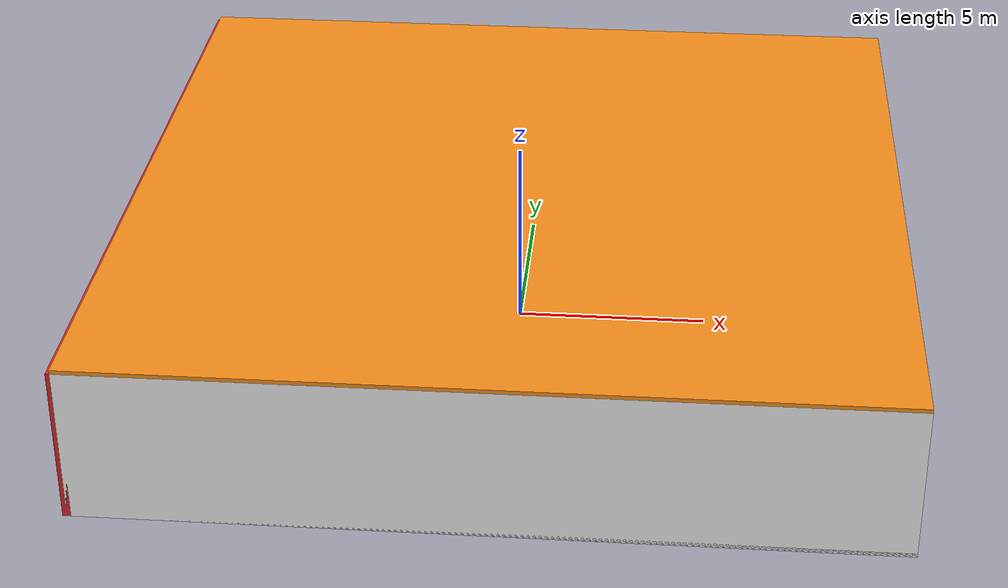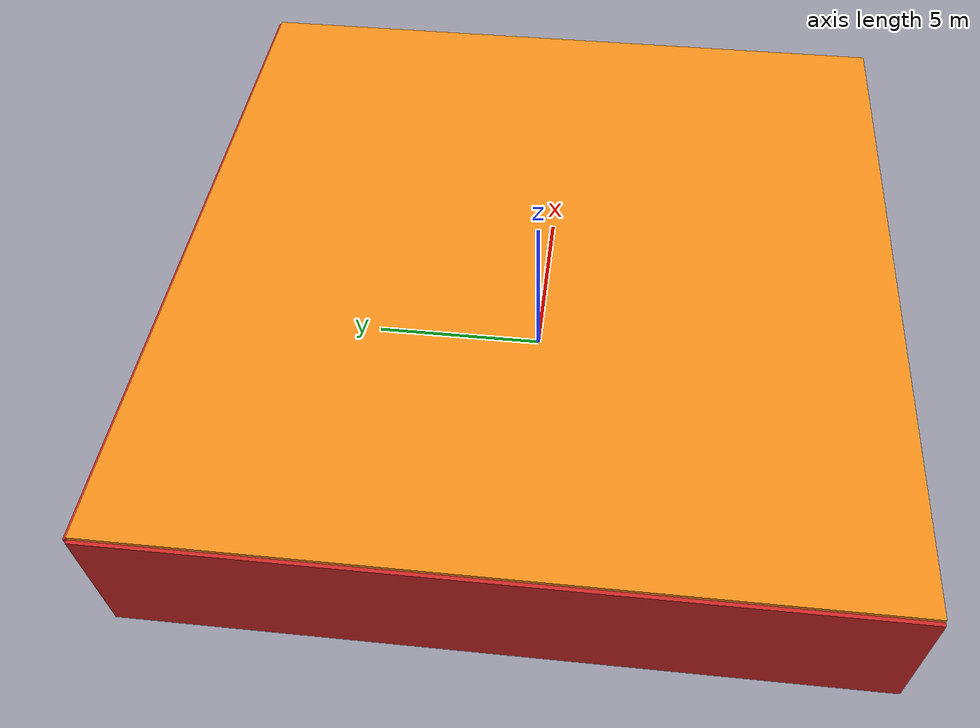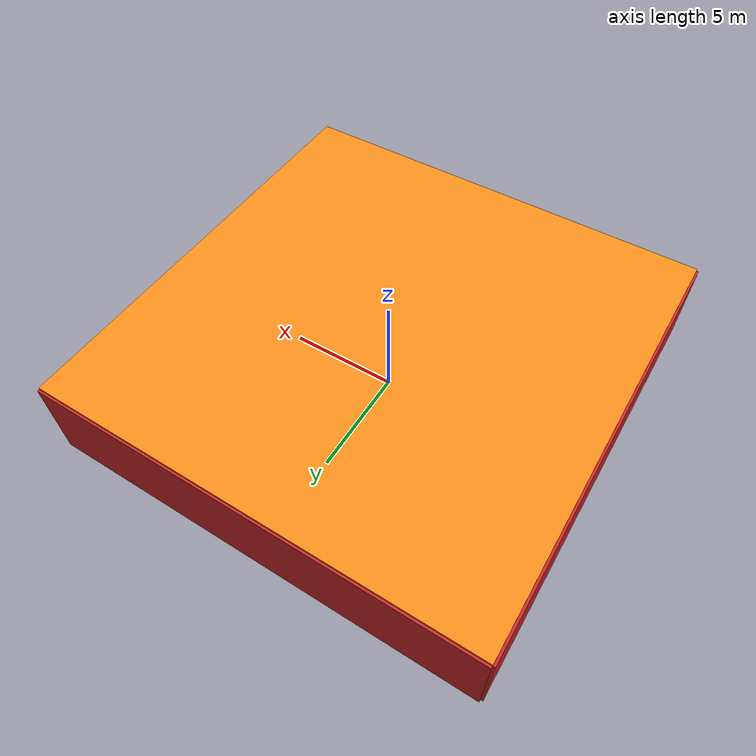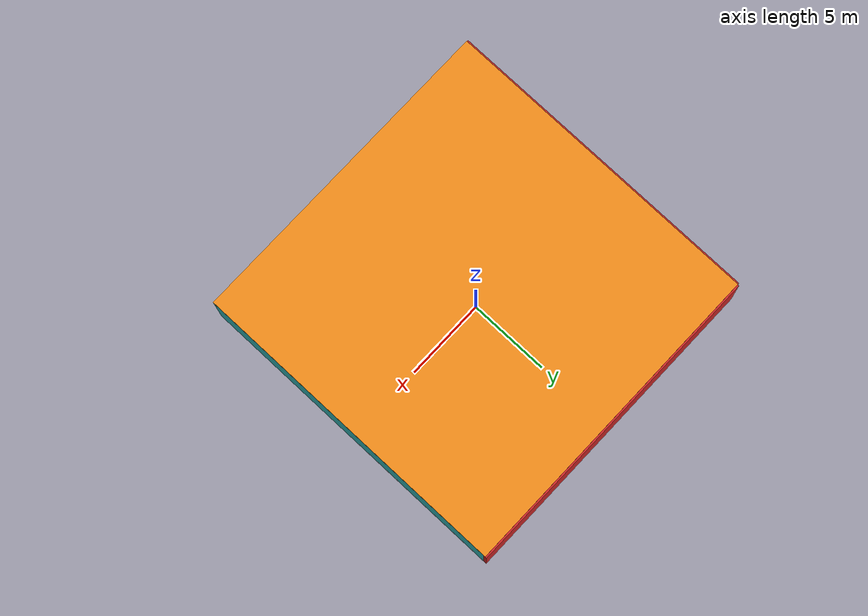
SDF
<sdf version="1.4">
 <world name="default">
  <physics type="ode">
   <max_step_size>0.001</max_step_size>
   <real_time_factor>1</real_time_factor>
   <real_time_update_rate>1000</real_time_update_rate>
   <gravity>0 0 -9.8</gravity>
  </physics>
  <scene><ambient>0.4 0.4 0.4 1</ambient><background>0.7 0.7 0.7 1</background><shadows>1</shadows></scene>
  <model name="Surrounding">
   <static>1</static>
   <link name="Ceiling">
    <collision name="Ceiling_Collision"><geometry><box><size>20 20 0.1</size></box></geometry></collision>
    <visual name="Ceiling_Visual">
     <geometry><box><size>20 20 0.1</size></box></geometry>
     <material>
      <script><uri>file://media/materials/scripts/gazebo.material</uri><name>Gazebo/Orange</name></script>
     </material>
    </visual>
    <pose>0 0 4.05 0 0 0</pose>
   </link>
   <link name="Wall_South">
    <collision name="Wall_South_Collision">
     <geometry><box><size>20 0 4</size></box></geometry>
     <pose>0 0 2 0 -0 0</pose>
    </collision>
    <visual name="Wall_South_Visual">
     <pose>0 0 2 0 -0 0</pose>
     <geometry><box><size>20 0 4</size></box></geometry>
     <material>
      <script><uri>file://media/materials/scripts/gazebo.material</uri><name>Gazebo/White</name></script>
     </material>
    </visual>
    <velocity_decay><linear>0</linear><angular>0</angular></velocity_decay>
    <pose>0 -10 0 0 -0 0</pose>
   </link>
   <link name="Wall_East">
    <collision name="Wall_21_Collision">
     <geometry><box><size>20 0 4</size></box></geometry>
     <pose>0 0 2 0 -0 0</pose>
    </collision>
    <visual name="Wall_21_Visual">
     <pose>0 0 2 0 -0 0</pose>
     <geometry><box><size>20 0 4</size></box></geometry>
     <material>
      <script>
       <uri>file://media/materials/scripts/gazebo.material</uri>
       <name>Gazebo/TurquoiseGlowOutline</name>
      </script>
     </material>
    </visual>
    <velocity_decay><linear>0</linear><angular>0</angular></velocity_decay>
    <pose>10 0 0 0 -0 1.5708</pose>
   </link>
   <link name="Wall_North">
    <collision name="Wall_22_Collision">
     <geometry><box><size>20 0.2 4</size></box></geometry>
     <pose>0 0 2 0 -0 0</pose>
    </collision>
    <visual name="Wall_22_Visual">
     <pose>0 0 2 0 -0 0</pose>
     <geometry><box><size>20 0.2 4</size></box></geometry>
     <material>
      <script><uri>file://media/materials/scripts/gazebo.material</uri><name>Gazebo/RedGlow</name></script>
     </material>
    </visual>
    <velocity_decay><linear>0</linear><angular>0</angular></velocity_decay>
    <pose>0 10 0 0 -0 0</pose>
   </link>
   <link name="Wall_West">
    <collision name="Wall_23_Collision">
     <geometry><box><size>20 0.2 4</size></box></geometry>
     <pose>0 0 2 0 -0 0</pose>
    </collision>
    <visual name="Wall_23_Visual">
     <pose>0 0 2 0 -0 0</pose>
     <geometry><box><size>20 0.2 4</size></box></geometry>
     <material>
      <script><uri>file://media/materials/scripts/gazebo.material</uri><name>Gazebo/Red</name></script>
     </material>
    </visual>
    <velocity_decay><linear>0</linear><angular>0</angular></velocity_decay>
    <pose>-10 0 0 0 0 -1.5708</pose>
   </link>
   <link name="Ground_link">
    <collision name="collision">
     <pose>0 0 .05 0 -0 0</pose>
     <geometry><box><size>20 20 0.1</size></box></geometry>
    </collision>
    <visual name="visual">
     <pose>0 0 .05 0 -0 0</pose>
     <geometry><box><size>20 20 0.1</size></box></geometry>
     <material>
      <script><uri>file://media/materials/scripts/gazebo.material</uri><name>Gazebo/White</name></script>
     </material>
    </visual>
   </link>
   <static>1</static>
  </model>
  <spherical_coordinates>
   <surface_model>EARTH_WGS84</surface_model>
   <latitude_deg>0</latitude_deg>
   <longitude_deg>0</longitude_deg>
   <elevation>0</elevation>
   <heading_deg>0</heading_deg>
  </spherical_coordinates>
  <light name="lightball_0" type="diffuse">
   <diffuse>0.8 0.8 0.8 1</diffuse>
   <specular>0.2 0.2 0.2 1</specular>
   <attenuation>
    <range>100</range>
    <constant>0.7</constant>
    <linear>0.01</linear>
    <quadratic>0.001</quadratic>
   </attenuation>
   <direction>-0.5 0.1 -0.9</direction>
   <pose>0.63142233605 -8.86736950125 3.73912659621 0 0 0</pose>
  </light>
  <light name="lightball_1" type="diffuse">
   <diffuse>0.8 0.8 0.8 1</diffuse>
   <specular>0.2 0.2 0.2 1</specular>
   <attenuation>
    <range>100</range>
    <constant>0.7</constant>
    <linear>0.01</linear>
    <quadratic>0.001</quadratic>
   </attenuation>
   <direction>-0.5 0.1 -0.9</direction>
   <pose>6.63354280443 -4.24593626255 3.44600456561 0 0 0</pose>
  </light>
  <light name="lightball_2" type="diffuse">
   <diffuse>0.8 0.8 0.8 1</diffuse>
   <specular>0.2 0.2 0.2 1</specular>
   <attenuation>
    <range>100</range>
    <constant>0.7</constant>
    <linear>0.01</linear>
    <quadratic>0.001</quadratic>
   </attenuation>
   <direction>-0.5 0.1 -0.9</direction>
   <pose>5.61205182436 3.38656805997 2.16062949826 0 0 0</pose>
  </light>
  <light name="lightball_3" type="diffuse">
   <diffuse>0.8 0.8 0.8 1</diffuse>
   <specular>0.2 0.2 0.2 1</specular>
   <attenuation>
    <range>100</range>
    <constant>0.7</constant>
    <linear>0.01</linear>
    <quadratic>0.001</quadratic>
   </attenuation>
   <direction>-0.5 0.1 -0.9</direction>
   <pose>2.65031079116 -8.42937544259 2.73388966857 0 0 0</pose>
  </light>
  <light name="lightball_4" type="diffuse">
   <diffuse>0.8 0.8 0.8 1</diffuse>
   <specular>0.2 0.2 0.2 1</specular>
   <attenuation>
    <range>100</range>
    <constant>0.7</constant>
    <linear>0.01</linear>
    <quadratic>0.001</quadratic>
   </attenuation>
   <direction>-0.5 0.1 -0.9</direction>
   <pose>9.76246441826 7.89847000956 2.06875182075 0 0 0</pose>
  </light>
  <light name="lightball_5" type="diffuse">
   <diffuse>0.8 0.8 0.8 1</diffuse>
   <specular>0.2 0.2 0.2 1</specular>
   <attenuation>
    <range>100</range>
    <constant>0.7</constant>
    <linear>0.01</linear>
    <quadratic>0.001</quadratic>
   </attenuation>
   <direction>-0.5 0.1 -0.9</direction>
   <pose>-2.24178442007 -4.83474109209 1.01635737326 0 0 0</pose>
  </light>
  <light name="lightball_6" type="diffuse">
   <diffuse>0.8 0.8 0.8 1</diffuse>
   <specular>0.2 0.2 0.2 1</specular>
   <attenuation>
    <range>100</range>
    <constant>0.7</constant>
    <linear>0.01</linear>
    <quadratic>0.001</quadratic>
   </attenuation>
   <direction>-0.5 0.1 -0.9</direction>
   <pose>-0.747211977042 6.51972388637 1.31273636484 0 0 0</pose>
  </light>
  <light name="lightball_7" type="diffuse">
   <diffuse>0.8 0.8 0.8 1</diffuse>
   <specular>0.2 0.2 0.2 1</specular>
   <attenuation>
    <range>100</range>
    <constant>0.7</constant>
    <linear>0.01</linear>
    <quadratic>0.001</quadratic>
   </attenuation>
   <direction>-0.5 0.1 -0.9</direction>
   <pose>5.6733031861 2.69556460752 2.4703326246 0 0 0</pose>
  </light>
  <light name="lightball_8" type="diffuse">
   <diffuse>0.8 0.8 0.8 1</diffuse>
   <specular>0.2 0.2 0.2 1</specular>
   <attenuation>
    <range>100</range>
    <constant>0.7</constant>
    <linear>0.01</linear>
    <quadratic>0.001</quadratic>
   </attenuation>
   <direction>-0.5 0.1 -0.9</direction>
   <pose>4.48633758134 -5.76674050393 2.82748223555 0 0 0</pose>
  </light>
  <light name="lightball_9" type="diffuse">
   <diffuse>0.8 0.8 0.8 1</diffuse>
   <specular>0.2 0.2 0.2 1</specular>
   <attenuation>
    <range>100</range>
    <constant>0.7</constant>
    <linear>0.01</linear>
    <quadratic>0.001</quadratic>
   </attenuation>
   <direction>-0.5 0.1 -0.9</direction>
   <pose>7.54790915047 1.2715502881 1.0017074774 0 0 0</pose>
  </light>
  <light name="lightball_10" type="diffuse">
   <diffuse>0.8 0.8 0.8 1</diffuse>
   <specular>0.2 0.2 0.2 1</specular>
   <attenuation>
    <range>100</range>
    <constant>0.7</constant>
    <linear>0.01</linear>
    <quadratic>0.001</quadratic>
   </attenuation>
   <direction>-0.5 0.1 -0.9</direction>
   <pose>4.90187516299 7.87778228976 3.31776215065 0 0 0</pose>
  </light>
  <light name="lightball_11" type="diffuse">
   <diffuse>0.8 0.8 0.8 1</diffuse>
   <specular>0.2 0.2 0.2 1</specular>
   <attenuation>
    <range>100</range>
    <constant>0.7</constant>
    <linear>0.01</linear>
    <quadratic>0.001</quadratic>
   </attenuation>
   <direction>-0.5 0.1 -0.9</direction>
   <pose>0.705830264733 -4.62929483683 0.626367826659 0 0 0</pose>
  </light>
  <light name="lightball_12" type="diffuse">
   <diffuse>0.8 0.8 0.8 1</diffuse>
   <specular>0.2 0.2 0.2 1</specular>
   <attenuation>
    <range>100</range>
    <constant>0.7</constant>
    <linear>0.01</linear>
    <quadratic>0.001</quadratic>
   </attenuation>
   <direction>-0.5 0.1 -0.9</direction>
   <pose>-1.82491359442 9.34800140001 2.26994262589 0 0 0</pose>
  </light>
  <include><uri>model://cabinet</uri><pose>-4.20581341402 5.28740440196 0 0 0 0.854156552939</pose></include>
  <include><uri>model://cabinet</uri><pose>-2.09546966724 2.62308791946 0 0 0 0.0498131506606</pose></include>
  <include>
   <uri>model://construction_cone</uri>
   <pose>3.55100561504 1.41038183632 0 0 0 1.67078179495</pose>
  </include>
  <include>
   <uri>model://textured_shapes</uri>
   <pose>6.51885958425 -6.54358853976 0 0 0 1.8297312826</pose>
  </include>
  <include><uri>model://cabinet</uri><pose>8.43680365176 4.37028737267 0 0 0 1.32466354755</pose></include>
 </world>
</sdf>

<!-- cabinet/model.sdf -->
<sdf version="1.5">
  <model name="cabinet">
    <static>true</static>
    <link name="cabinet_bottom_plate">
      <inertial>
        <pose>0 0 -1 0 0 0</pose>
        <inertia>
          <ixx>2.050000</ixx>
          <ixy>0</ixy>
          <ixz>0</ixz>
          <iyy>2.050000</iyy>
          <iyz>0</iyz>
          <izz>2.050000</izz>
        </inertia>
        <mass>25.000000</mass>
      </inertial>
      <collision name="cabinet_bottom_plate_geom">
        <pose>0 0 0.010000 0 0 0</pose>
        <geometry>
          <box>
            <size>0.450000 0.450000 0.020000</size>
          </box>
        </geometry>
      </collision>
      <visual name="cabinet_bottom_plate_geom_visual">
        <pose>0 0 0.010000 0 0 0</pose>
        <geometry>
          <box>
            <size>0.450000 0.450000 0.020000</size>
          </box>
        </geometry>
        <material>
          <script>
            <uri>model://media/materials/scripts/gazebo.material</uri>
            <name>Gazebo/Wood</name>
          </script>
        </material>
      </visual>
      <collision name="cabinet_bottom_plate_geom_cabinet_back_plate">
        <pose>0.235000 0 0.510000 0 0 0</pose>
        <geometry>
          <box>
            <size>0.020000 0.450000 1.020000</size>
          </box>
        </geometry>
      </collision>
      <visual name="cabinet_bottom_plate_geom_cabinet_back_plate_visual">
        <pose>0.235000 0 0.510000 0 0 0</pose>
        <geometry>
          <box>
            <size>0.020000 0.450000 1.020000</size>
          </box>
        </geometry>
        <material>
          <script>
            <uri>model://media/materials/scripts/gazebo.material</uri>
            <name>Gazebo/Wood</name>
          </script>
        </material>
      </visual>
      <collision name="cabinet_bottom_plate_geom_cabinet_left_plate">
        <pose>0 0.235000 0.510000 0 0 0</pose>
        <geometry>
          <box>
            <size>0.450000 0.020000 1.020000</size>
          </box>
        </geometry>
      </collision>
      <visual name="cabinet_bottom_plate_geom_cabinet_left_plate_visual">
        <pose>0 0.235000 0.510000 0 0 0</pose>
        <geometry>
          <box>
            <size>0.450000 0.020000 1.020000</size>
          </box>
        </geometry>
        <material>
          <script>
            <uri>model://media/materials/scripts/gazebo.material</uri>
            <name>Gazebo/Wood</name>
          </script>
        </material>
      </visual>
      <collision name="cabinet_bottom_plate_geom_cabinet_middle_plate">
        <pose>0 0 0.510000 0 0 0</pose>
        <geometry>
          <box>
            <size>0.450000 0.450000 0.020000</size>
          </box>
        </geometry>
      </collision>
      <visual name="cabinet_bottom_plate_geom_cabinet_middle_plate_visual">
        <pose>0 0 0.510000 0 0 0</pose>
        <geometry>
          <box>
            <size>0.450000 0.450000 0.020000</size>
          </box>
        </geometry>
        <material>
          <script>
            <uri>model://media/materials/scripts/gazebo.material</uri>
            <name>Gazebo/Wood</name>
          </script>
        </material>
      </visual>
      <collision name="cabinet_bottom_plate_geom_cabinet_right_plate">
        <pose>0 -0.235000 0.510000 0 0 0</pose>
        <geometry>
          <box>
            <size>0.450000 0.020000 1.020000</size>
          </box>
        </geometry>
      </collision>
      <visual name="cabinet_bottom_plate_geom_cabinet_right_plate_visual">
        <pose>0 -0.235000 0.510000 0 0 0</pose>
        <geometry>
          <box>
            <size>0.450000 0.020000 1.020000</size>
          </box>
        </geometry>
        <material>
          <script>
            <uri>model://media/materials/scripts/gazebo.material</uri>
            <name>Gazebo/Wood</name>
          </script>
        </material>
      </visual>
      <collision name="cabinet_bottom_plate_geom_cabinet_top_plate">
        <pose>0 0 1.010000 0 0 0</pose>
        <geometry>
          <box>
            <size>0.450000 0.450000 0.020000</size>
          </box>
        </geometry>
      </collision>
      <visual name="cabinet_bottom_plate_geom_cabinet_top_plate_visual">
        <pose>0 0 1.010000 0 0 0</pose>
        <geometry>
          <box>
            <size>0.450000 0.450000 0.020000</size>
          </box>
        </geometry>
        <material>
          <script>
            <uri>model://media/materials/scripts/gazebo.material</uri>
            <name>Gazebo/Wood</name>
          </script>
        </material>
      </visual>
    </link>
  </model>
</sdf>

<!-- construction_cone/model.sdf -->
<sdf version="1.5">
  <model name="Construction Cone">
    <link name="link">
      <collision name="collision">
        <geometry>
          <mesh>
            <scale>10 10 10</scale>
            <uri>file://isr-testbed/construction_cone/meshes/construction_cone.dae</uri>
          </mesh>
        </geometry>
      </collision>
      <visual name="visual">
        <geometry>
          <mesh>
            <scale>10 10 10</scale>
            <uri>file://isr-testbed/construction_cone/meshes/construction_cone.dae</uri>
          </mesh>
        </geometry>
      </visual>
    </link>
  </model>
</sdf>

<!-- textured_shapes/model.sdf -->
<sdf version="1.6">
  <model name="textured_shapes">
    <pose>0 0 0.5 0 0 0</pose>
    <link name="box">
      <pose>0 -1.5 0 0 0 0</pose>
      <collision name="collision">
        <geometry>
          <box>
            <size>1 1 1</size>
          </box>
        </geometry>
      </collision>
      <visual name="visual">
        <geometry>
          <box>
            <size>1 1 1</size>
          </box>
        </geometry>
        <material>
          <script>
            <uri>model://../model_source/models/textured_shapes/materials/scripts</uri>
            <uri>model://../model_source/models/textured_shapes/materials/textures</uri>
            <name>TexturedShape/Squares</name>
          </script>
        </material>
      </visual>
    </link>
    <link name="sphere">
      <collision name="collision">
        <geometry>
          <sphere>
            <radius>0.5</radius>
          </sphere>
        </geometry>
      </collision>
      <visual name="visual">
        <geometry>
          <sphere>
            <radius>0.5</radius>
          </sphere>
        </geometry>
        <material>
          <script>
            <uri>model://../model_source/models/textured_shapes/materials/scripts</uri>
            <uri>model://../model_source/models/textured_shapes/materials/textures</uri>
            <name>TexturedShape/Squares</name>
          </script>
        </material>
      </visual>
    </link>
    <link name="cylinder">
      <pose>0 1.5 0 0 0 0</pose>
      <collision name="collision">
        <geometry>
          <cylinder>
            <radius>0.5</radius>
            <length>1</length>
          </cylinder>
        </geometry>
      </collision>
      <visual name="visual">
        <geometry>
          <cylinder>
            <radius>0.5</radius>
            <length>1</length>
          </cylinder>
        </geometry>
        <material>
          <script>
            <uri>model://../model_source/models/textured_shapes/materials/scripts</uri>
            <uri>model://../model_source/models/textured_shapes/materials/textures</uri>
            <name>TexturedShape/Squares</name>
          </script>
        </material>
      </visual>
    </link>
  </model>
</sdf>
